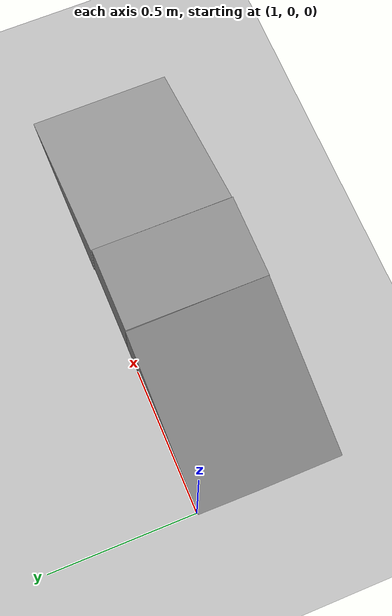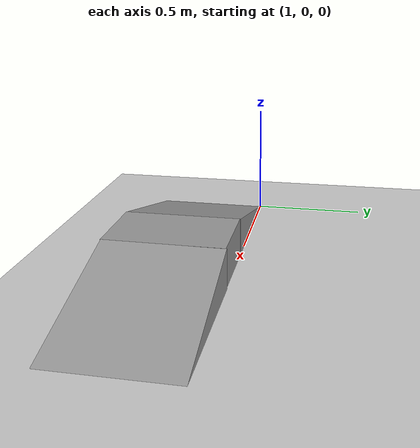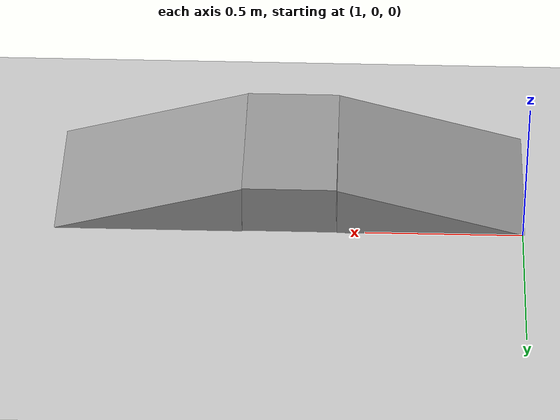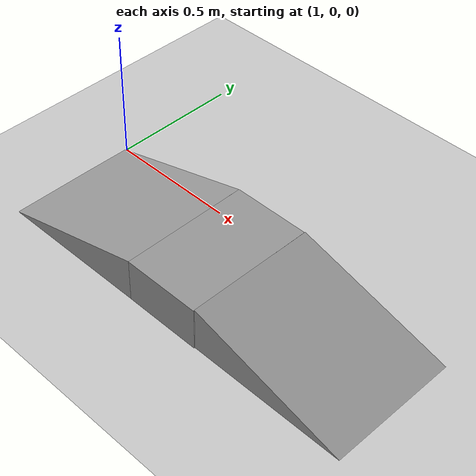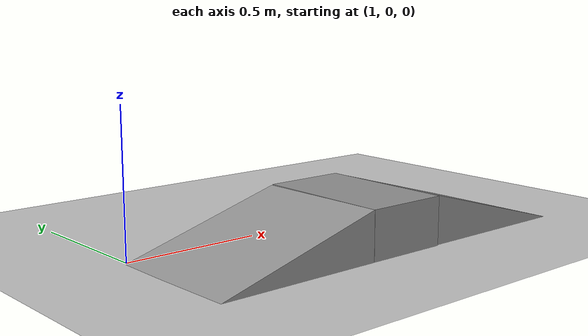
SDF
<sdf version="1.6">
 <world name="default">
  <light name="sun" type="directional">
   <pose>0 0 10 0 -0 0</pose>
   <diffuse>0.8 0.8 0.8 1</diffuse>
   <specular>0.2 0.2 0.2 1</specular>
   <attenuation>
    <range>1000</range>
    <constant>0.9</constant>
    <linear>0.01</linear>
    <quadratic>0.001</quadratic>
   </attenuation>
   <direction>-0.5 0.1 -0.9</direction>
   <spot><inner_angle>0</inner_angle><outer_angle>0</outer_angle><falloff>0</falloff></spot>
  </light>
  <model name="ground_plane">
   <static>1</static>
   <link name="link">
    <collision name="collision">
     <geometry><plane><normal>0 0 1</normal><size>100 100</size></plane></geometry>
     <surface>
      <contact><collide_bitmask>65535</collide_bitmask></contact>
      <friction><ode><mu>400</mu><mu2>200</mu2></ode></friction>
     </surface>
    </collision>
    <visual name="visual">
     <cast_shadows>0</cast_shadows>
     <geometry><plane><normal>0 0 1</normal><size>100 100</size></plane></geometry>
     <material>
      <script><uri>file://media/materials/scripts/gazebo.material</uri><name>Gazebo/Grey</name></script>
     </material>
    </visual>
   </link>
  </model>
  <gravity>0 0 -9.8</gravity>
  <magnetic_field>6e-06 2.3e-05 -4.2e-05</magnetic_field>
  <atmosphere type="adiabatic"/>
  <physics name="default_physics" default="0" type="ode">
   <max_step_size>0.001</max_step_size>
   <real_time_factor>1</real_time_factor>
   <real_time_update_rate>1000</real_time_update_rate>
  </physics>
  <scene><ambient>0.4 0.4 0.4 1</ambient><background>0.7 0.7 0.7 1</background><shadows>1</shadows></scene>
  <spherical_coordinates>
   <surface_model>EARTH_WGS84</surface_model>
   <latitude_deg>0</latitude_deg>
   <longitude_deg>0</longitude_deg>
   <elevation>0</elevation>
   <heading_deg>0</heading_deg>
  </spherical_coordinates>
  <model name="0406_2_0">
   <link name="link_2">
    <inertial>
     <mass>1</mass>
     <inertia>
      <ixx>0.166667</ixx>
      <ixy>0</ixy>
      <ixz>0</ixz>
      <iyy>0.166667</iyy>
      <iyz>0</iyz>
      <izz>0.166667</izz>
     </inertia>
    </inertial>
    <pose>-0.100054 0.165596 0.000309 1.57083 -0 0</pose>
    <visual name="visual">
     <geometry>
      <mesh><uri>/home/shunya/project/OD-wheel-leg/src/od_model/meshes/10_1.STL</uri><scale>1 1 1</scale></mesh>
     </geometry>
     <material>
      <lighting>1</lighting>
      <script><uri>file://media/materials/scripts/gazebo.material</uri><name>Gazebo/Grey</name></script>
      <shader type="pixel"/>
     </material>
    </visual>
    <collision name="collision">
     <geometry>
      <mesh><uri>/home/shunya/project/OD-wheel-leg/src/od_model/meshes/10_1.STL</uri><scale>1 1 1</scale></mesh>
     </geometry>
     <surface>
      <friction>
       <ode><mu>1</mu><mu2>1</mu2><fdir1>0 0 0</fdir1><slip1>0</slip1><slip2>0</slip2></ode>
       <torsional>
        <coefficient>1</coefficient>
        <patch_radius>0</patch_radius>
        <surface_radius>0</surface_radius>
        <use_patch_radius>1</use_patch_radius>
        <ode><slip>0</slip></ode>
       </torsional>
      </friction>
      <bounce><restitution_coefficient>0</restitution_coefficient><threshold>1e+06</threshold></bounce>
      <contact>
       <collide_without_contact>0</collide_without_contact>
       <collide_without_contact_bitmask>1</collide_without_contact_bitmask>
       <collide_bitmask>1</collide_bitmask>
       <ode>
        <soft_cfm>0</soft_cfm>
        <soft_erp>0.2</soft_erp>
        <kp>1e+13</kp>
        <kd>1</kd>
        <max_vel>0.01</max_vel>
        <min_depth>0</min_depth>
       </ode>
       <bullet>
        <split_impulse>1</split_impulse>
        <split_impulse_penetration_threshold>-0.01</split_impulse_penetration_threshold>
        <soft_cfm>0</soft_cfm>
        <soft_erp>0.2</soft_erp>
        <kp>1e+13</kp>
        <kd>1</kd>
       </bullet>
      </contact>
     </surface>
    </collision>
   </link>
   <link name="link_3">
    <inertial>
     <mass>1</mass>
     <inertia>
      <ixx>0.166667</ixx>
      <ixy>0</ixy>
      <ixz>0</ixz>
      <iyy>0.166667</iyy>
      <iyz>0</iyz>
      <izz>0.166667</izz>
     </inertia>
    </inertial>
    <pose>0.199444 0.168367 -0.000165 1.56691 -0 0</pose>
    <visual name="visual">
     <geometry>
      <mesh><uri>/home/shunya/project/OD-wheel-leg/src/od_model/meshes/10_3.STL</uri><scale>1 1 1</scale></mesh>
     </geometry>
     <material>
      <lighting>1</lighting>
      <script><uri>file://media/materials/scripts/gazebo.material</uri><name>Gazebo/Grey</name></script>
      <shader type="pixel"/>
     </material>
    </visual>
    <collision name="collision">
     <geometry>
      <mesh><uri>/home/shunya/project/OD-wheel-leg/src/od_model/meshes/10_3.STL</uri><scale>1 1 1</scale></mesh>
     </geometry>
     <surface>
      <friction>
       <ode><mu>1</mu><mu2>1</mu2><fdir1>0 0 0</fdir1><slip1>0</slip1><slip2>0</slip2></ode>
       <torsional>
        <coefficient>1</coefficient>
        <patch_radius>0</patch_radius>
        <surface_radius>0</surface_radius>
        <use_patch_radius>1</use_patch_radius>
        <ode><slip>0</slip></ode>
       </torsional>
      </friction>
      <bounce><restitution_coefficient>0</restitution_coefficient><threshold>1e+06</threshold></bounce>
      <contact>
       <collide_without_contact>0</collide_without_contact>
       <collide_without_contact_bitmask>1</collide_without_contact_bitmask>
       <collide_bitmask>1</collide_bitmask>
       <ode>
        <soft_cfm>0</soft_cfm>
        <soft_erp>0.2</soft_erp>
        <kp>1e+13</kp>
        <kd>1</kd>
        <max_vel>0.01</max_vel>
        <min_depth>0</min_depth>
       </ode>
       <bullet>
        <split_impulse>1</split_impulse>
        <split_impulse_penetration_threshold>-0.01</split_impulse_penetration_threshold>
        <soft_cfm>0</soft_cfm>
        <soft_erp>0.2</soft_erp>
        <kp>1e+13</kp>
        <kd>1</kd>
       </bullet>
      </contact>
     </surface>
    </collision>
   </link>
   <link name="link_3_clone">
    <inertial>
     <mass>1</mass>
     <inertia>
      <ixx>0.166667</ixx>
      <ixy>0</ixy>
      <ixz>0</ixz>
      <iyy>0.166667</iyy>
      <iyz>0</iyz>
      <izz>0.166667</izz>
     </inertia>
    </inertial>
    <pose>-0.099388 -0.333963 -0.000144 1.57468 -2.2e-05 -3.13599</pose>
    <visual name="visual">
     <geometry>
      <mesh><uri>/home/shunya/project/OD-wheel-leg/src/od_model/meshes/10_3.STL</uri><scale>1 1 1</scale></mesh>
     </geometry>
     <material>
      <lighting>1</lighting>
      <script><uri>file://media/materials/scripts/gazebo.material</uri><name>Gazebo/Grey</name></script>
      <shader type="pixel"/>
     </material>
    </visual>
    <collision name="collision">
     <geometry>
      <mesh><uri>/home/shunya/project/OD-wheel-leg/src/od_model/meshes/10_3.STL</uri><scale>1 1 1</scale></mesh>
     </geometry>
     <surface>
      <friction>
       <ode><mu>1</mu><mu2>1</mu2><fdir1>0 0 0</fdir1><slip1>0</slip1><slip2>0</slip2></ode>
       <torsional>
        <coefficient>1</coefficient>
        <patch_radius>0</patch_radius>
        <surface_radius>0</surface_radius>
        <use_patch_radius>1</use_patch_radius>
        <ode><slip>0</slip></ode>
       </torsional>
      </friction>
      <bounce><restitution_coefficient>0</restitution_coefficient><threshold>1e+06</threshold></bounce>
      <contact>
       <collide_without_contact>0</collide_without_contact>
       <collide_without_contact_bitmask>1</collide_without_contact_bitmask>
       <collide_bitmask>1</collide_bitmask>
       <ode>
        <soft_cfm>0</soft_cfm>
        <soft_erp>0.2</soft_erp>
        <kp>1e+13</kp>
        <kd>1</kd>
        <max_vel>0.01</max_vel>
        <min_depth>0</min_depth>
       </ode>
       <bullet>
        <split_impulse>1</split_impulse>
        <split_impulse_penetration_threshold>-0.01</split_impulse_penetration_threshold>
        <soft_cfm>0</soft_cfm>
        <soft_erp>0.2</soft_erp>
        <kp>1e+13</kp>
        <kd>1</kd>
       </bullet>
      </contact>
     </surface>
    </collision>
   </link>
   <static>1</static>
   <pose>1.69337 -0.165655 -0.000305 0 -0 0</pose>
  </model>
 </world>
</sdf>
